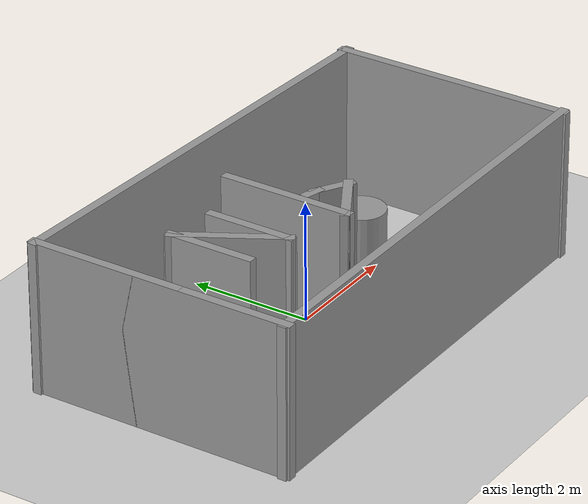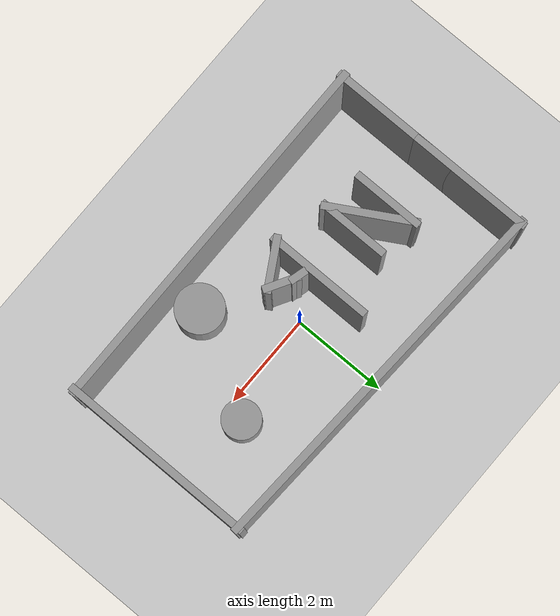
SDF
<sdf version='1.7'>
  <world name='default'>
    <light name='sun' type='directional'>
      <cast_shadows>1</cast_shadows>
      <pose>0 0 10 0 -0 0</pose>
      <diffuse>0.8 0.8 0.8 1</diffuse>
      <specular>0.2 0.2 0.2 1</specular>
      <attenuation>
        <range>1000</range>
        <constant>0.9</constant>
        <linear>0.01</linear>
        <quadratic>0.001</quadratic>
      </attenuation>
      <direction>-0.5 0.1 -0.9</direction>
      <spot>
        <inner_angle>0</inner_angle>
        <outer_angle>0</outer_angle>
        <falloff>0</falloff>
      </spot>
    </light>
    <model name='ground_plane'>
      <static>1</static>
      <link name='link'>
        <collision name='collision'>
          <geometry>
            <plane>
              <normal>0 0 1</normal>
              <size>100 100</size>
            </plane>
          </geometry>
          <surface>
            <contact>
              <collide_bitmask>65535</collide_bitmask>
              <ode/>
            </contact>
            <friction>
              <ode>
                <mu>100</mu>
                <mu2>50</mu2>
              </ode>
              <torsional>
                <ode/>
              </torsional>
            </friction>
            <bounce/>
          </surface>
          <max_contacts>10</max_contacts>
        </collision>
        <visual name='visual'>
          <cast_shadows>0</cast_shadows>
          <geometry>
            <plane>
              <normal>0 0 1</normal>
              <size>100 100</size>
            </plane>
          </geometry>
          <material>
            <script>
              <uri>file://media/materials/scripts/gazebo.material</uri>
              <name>Gazebo/Grey</name>
            </script>
          </material>
        </visual>
        <self_collide>0</self_collide>
        <enable_wind>0</enable_wind>
        <kinematic>0</kinematic>
      </link>
    </model>
    <gravity>0 0 -9.8</gravity>
    <magnetic_field>6e-06 2.3e-05 -4.2e-05</magnetic_field>
    <atmosphere type='adiabatic'/>
    <physics type='ode'>
      <max_step_size>0.002</max_step_size>
      <real_time_factor>1</real_time_factor>
      <real_time_update_rate>500</real_time_update_rate>
    </physics>
    <scene>
      <ambient>0.4 0.4 0.4 1</ambient>
      <background>0.7 0.7 0.7 1</background>
      <shadows>1</shadows>
    </scene>
    <audio>
      <device>default</device>
    </audio>
    <wind/>
    <spherical_coordinates>
      <surface_model>EARTH_WGS84</surface_model>
      <latitude_deg>0</latitude_deg>
      <longitude_deg>0</longitude_deg>
      <elevation>0</elevation>
      <heading_deg>0</heading_deg>
    </spherical_coordinates>
    <model name='wordnb'>
      <pose>0 0 0 0 0 0</pose>
      <link name='Wall_0'>
        <collision name='Wall_0_Collision'>
          <geometry>
            <box>
              <size>2.625 0.15 2.5</size>
            </box>
          </geometry>
          <pose>0 0 1.25 0 -0 0</pose>
          <max_contacts>10</max_contacts>
          <surface>
            <contact>
              <ode/>
            </contact>
            <bounce/>
            <friction>
              <torsional>
                <ode/>
              </torsional>
              <ode/>
            </friction>
          </surface>
        </collision>
        <visual name='Wall_0_Visual'>
          <pose>0 0 1.25 0 -0 0</pose>
          <geometry>
            <box>
              <size>2.625 0.15 2.5</size>
            </box>
          </geometry>
          <material>
            <script>
              <uri>file://media/materials/scripts/gazebo.material</uri>
              <name>Gazebo/Grey</name>
            </script>
            <ambient>1 1 1 1</ambient>
          </material>
          <meta>
            <layer>0</layer>
          </meta>
        </visual>
        <pose>-3.825 0.91125 0 0 -0 1.5708</pose>
        <self_collide>0</self_collide>
        <enable_wind>0</enable_wind>
        <kinematic>0</kinematic>
      </link>
      <link name='Wall_1'>
        <collision name='Wall_1_Collision'>
          <geometry>
            <box>
              <size>4.5 0.15 2.5</size>
            </box>
          </geometry>
          <pose>0 0 1.25 0 -0 0</pose>
          <max_contacts>10</max_contacts>
          <surface>
            <contact>
              <ode/>
            </contact>
            <bounce/>
            <friction>
              <torsional>
                <ode/>
              </torsional>
              <ode/>
            </friction>
          </surface>
        </collision>
        <visual name='Wall_1_Visual'>
          <pose>0 0 1.25 0 -0 0</pose>
          <geometry>
            <box>
              <size>4.5 0.15 2.5</size>
            </box>
          </geometry>
          <material>
            <script>
              <uri>file://media/materials/scripts/gazebo.material</uri>
              <name>Gazebo/Grey</name>
            </script>
            <ambient>1 1 1 1</ambient>
          </material>
          <meta>
            <layer>0</layer>
          </meta>
        </visual>
        <pose>-3.825 -0.02625 0 0 -0 -1.5708</pose>
        <self_collide>0</self_collide>
        <enable_wind>0</enable_wind>
        <kinematic>0</kinematic>
      </link>
      <link name='Wall_10'>
        <collision name='Wall_10_Collision'>
          <geometry>
            <box>
              <size>1.5 0.15 2.5</size>
            </box>
          </geometry>
          <pose>0 0 1.25 0 -0 0</pose>
          <max_contacts>10</max_contacts>
          <surface>
            <contact>
              <ode/>
            </contact>
            <bounce/>
            <friction>
              <torsional>
                <ode/>
              </torsional>
              <ode/>
            </friction>
          </surface>
        </collision>
        <visual name='Wall_10_Visual'>
          <pose>0 0 1.25 0 -0 0</pose>
          <geometry>
            <box>
              <size>1.5 0.15 2.5</size>
            </box>
          </geometry>
          <material>
            <script>
              <uri>file://media/materials/scripts/gazebo.material</uri>
              <name>Gazebo/Grey</name>
            </script>
            <ambient>1 1 1 1</ambient>
          </material>
          <meta>
            <layer>0</layer>
          </meta>
        </visual>
        <pose>-1.755 -0.195192 0 0 -0 1.5708</pose>
        <self_collide>0</self_collide>
        <enable_wind>0</enable_wind>
        <kinematic>0</kinematic>
      </link>
      <link name='Wall_12'>
        <collision name='Wall_12_Collision'>
          <geometry>
            <box>
              <size>2.25 0.15 2.5</size>
            </box>
          </geometry>
          <pose>0 0 1.25 0 -0 0</pose>
          <max_contacts>10</max_contacts>
          <surface>
            <contact>
              <ode/>
            </contact>
            <bounce/>
            <friction>
              <torsional>
                <ode/>
              </torsional>
              <ode/>
            </friction>
          </surface>
        </collision>
        <visual name='Wall_12_Visual'>
          <pose>0 0 1.25 0 -0 0</pose>
          <geometry>
            <box>
              <size>2.25 0.15 2.5</size>
            </box>
          </geometry>
          <material>
            <script>
              <uri>file://media/materials/scripts/gazebo.material</uri>
              <name>Gazebo/Grey</name>
            </script>
            <ambient>1 1 1 1</ambient>
          </material>
          <meta>
            <layer>0</layer>
          </meta>
        </visual>
        <pose>-0.675 -0.11625 0 0 -0 -1.5708</pose>
        <self_collide>0</self_collide>
        <enable_wind>0</enable_wind>
        <kinematic>0</kinematic>
      </link>
      <link name='Wall_13'>
        <collision name='Wall_13_Collision'>
          <geometry>
            <box>
              <size>1.125 0.15 2.5</size>
            </box>
          </geometry>
          <pose>0 0 1.25 0 -0 0</pose>
          <max_contacts>10</max_contacts>
          <surface>
            <contact>
              <ode/>
            </contact>
            <bounce/>
            <friction>
              <torsional>
                <ode/>
              </torsional>
              <ode/>
            </friction>
          </surface>
        </collision>
        <visual name='Wall_13_Visual'>
          <pose>0 0 1.25 0 -0 0</pose>
          <geometry>
            <box>
              <size>1.125 0.15 2.5</size>
            </box>
          </geometry>
          <material>
            <script>
              <uri>file://media/materials/scripts/gazebo.material</uri>
              <name>Gazebo/Grey</name>
            </script>
            <ambient>1 1 1 1</ambient>
          </material>
          <meta>
            <layer>0</layer>
          </meta>
        </visual>
        <pose>-0.285288 -0.90375 0 0 -0 0.523599</pose>
        <self_collide>0</self_collide>
        <enable_wind>0</enable_wind>
        <kinematic>0</kinematic>
      </link>
      <link name='Wall_14'>
        <collision name='Wall_14_Collision'>
          <geometry>
            <box>
              <size>0.75 0.15 2.5</size>
            </box>
          </geometry>
          <pose>0 0 1.25 0 -0 0</pose>
          <max_contacts>10</max_contacts>
          <surface>
            <contact>
              <ode/>
            </contact>
            <bounce/>
            <friction>
              <torsional>
                <ode/>
              </torsional>
              <ode/>
            </friction>
          </surface>
        </collision>
        <visual name='Wall_14_Visual'>
          <pose>0 0 1.25 0 -0 0</pose>
          <geometry>
            <box>
              <size>0.75 0.15 2.5</size>
            </box>
          </geometry>
          <material>
            <script>
              <uri>file://media/materials/scripts/gazebo.material</uri>
              <name>Gazebo/Grey</name>
            </script>
            <ambient>1 1 1 1</ambient>
          </material>
          <meta>
            <layer>0</layer>
          </meta>
        </visual>
        <pose>-0.122909 -0.5475 0 0 -0 2.61799</pose>
        <self_collide>0</self_collide>
        <enable_wind>0</enable_wind>
        <kinematic>0</kinematic>
      </link>
      <link name='Wall_15'>
        <collision name='Wall_15_Collision'>
          <geometry>
            <box>
              <size>0.375 0.15 2.5</size>
            </box>
          </geometry>
          <pose>0 0 1.25 0 -0 0</pose>
          <max_contacts>10</max_contacts>
          <surface>
            <contact>
              <ode/>
            </contact>
            <bounce/>
            <friction>
              <torsional>
                <ode/>
              </torsional>
              <ode/>
            </friction>
          </surface>
        </collision>
        <visual name='Wall_15_Visual'>
          <pose>0 0 1.25 0 -0 0</pose>
          <geometry>
            <box>
              <size>0.375 0.15 2.5</size>
            </box>
          </geometry>
          <material>
            <script>
              <uri>file://media/materials/scripts/gazebo.material</uri>
              <name>Gazebo/Grey</name>
            </script>
            <ambient>1 1 1 1</ambient>
          </material>
          <meta>
            <layer>0</layer>
          </meta>
        </visual>
        <pose>-0.422685 -0.396839 0 0 -0 2.87979</pose>
        <self_collide>0</self_collide>
        <enable_wind>0</enable_wind>
        <kinematic>0</kinematic>
      </link>
      <link name='Wall_2'>
        <collision name='Wall_2_Collision'>
          <geometry>
            <box>
              <size>7.875 0.15 2.5</size>
            </box>
          </geometry>
          <pose>0 0 1.25 0 -0 0</pose>
          <max_contacts>10</max_contacts>
          <surface>
            <contact>
              <ode/>
            </contact>
            <bounce/>
            <friction>
              <torsional>
                <ode/>
              </torsional>
              <ode/>
            </friction>
          </surface>
        </collision>
        <visual name='Wall_2_Visual'>
          <pose>0 0 1.25 0 -0 0</pose>
          <geometry>
            <box>
              <size>7.875 0.15 2.5</size>
            </box>
          </geometry>
          <material>
            <script>
              <uri>file://media/materials/scripts/gazebo.material</uri>
              <name>Gazebo/Grey</name>
            </script>
            <ambient>1 1 1 1</ambient>
          </material>
          <meta>
            <layer>0</layer>
          </meta>
        </visual>
        <pose>0 -2.16375 0 0 -0 0</pose>
        <self_collide>0</self_collide>
        <enable_wind>0</enable_wind>
        <kinematic>0</kinematic>
      </link>
      <link name='Wall_3'>
        <collision name='Wall_3_Collision'>
          <geometry>
            <box>
              <size>4.125 0.15 2.5</size>
            </box>
          </geometry>
          <pose>0 0 1.25 0 -0 0</pose>
          <max_contacts>10</max_contacts>
          <surface>
            <contact>
              <ode/>
            </contact>
            <bounce/>
            <friction>
              <torsional>
                <ode/>
              </torsional>
              <ode/>
            </friction>
          </surface>
        </collision>
        <visual name='Wall_3_Visual'>
          <pose>0 0 1.25 0 -0 0</pose>
          <geometry>
            <box>
              <size>4.125 0.15 2.5</size>
            </box>
          </geometry>
          <material>
            <script>
              <uri>file://media/materials/scripts/gazebo.material</uri>
              <name>Gazebo/Grey</name>
            </script>
            <ambient>1 1 1 1</ambient>
          </material>
          <meta>
            <layer>0</layer>
          </meta>
        </visual>
        <pose>3.825 -0.21375 0 0 -0 1.5708</pose>
        <self_collide>0</self_collide>
        <enable_wind>0</enable_wind>
        <kinematic>0</kinematic>
      </link>
      <link name='Wall_4'>
        <collision name='Wall_4_Collision'>
          <geometry>
            <box>
              <size>7.88418 0.15 2.5</size>
            </box>
          </geometry>
          <pose>0 0 1.25 0 -0 0</pose>
          <max_contacts>10</max_contacts>
          <surface>
            <contact>
              <ode/>
            </contact>
            <bounce/>
            <friction>
              <torsional>
                <ode/>
              </torsional>
              <ode/>
            </friction>
          </surface>
        </collision>
        <visual name='Wall_4_Visual'>
          <pose>0 0 1.25 0 -0 0</pose>
          <geometry>
            <box>
              <size>7.88418 0.15 2.5</size>
            </box>
          </geometry>
          <material>
            <script>
              <uri>file://media/materials/scripts/gazebo.material</uri>
              <name>Gazebo/Grey</name>
            </script>
            <ambient>1 1 1 1</ambient>
          </material>
          <meta>
            <layer>0</layer>
          </meta>
        </visual>
        <pose>0 1.92375 0 0 -0 3.09261</pose>
        <self_collide>0</self_collide>
        <enable_wind>0</enable_wind>
        <kinematic>0</kinematic>
      </link>
      <link name='Wall_6'>
        <collision name='Wall_6_Collision'>
          <geometry>
            <box>
              <size>1.5 0.15 2.5</size>
            </box>
          </geometry>
          <pose>0 0 1.25 0 -0 0</pose>
          <max_contacts>10</max_contacts>
          <surface>
            <contact>
              <ode/>
            </contact>
            <bounce/>
            <friction>
              <torsional>
                <ode/>
              </torsional>
              <ode/>
            </friction>
          </surface>
        </collision>
        <visual name='Wall_6_Visual'>
          <pose>0 0 1.25 0 -0 0</pose>
          <geometry>
            <box>
              <size>1.5 0.15 2.5</size>
            </box>
          </geometry>
          <material>
            <script>
              <uri>file://media/materials/scripts/gazebo.material</uri>
              <name>Gazebo/Grey</name>
            </script>
            <ambient>1 1 1 1</ambient>
          </material>
          <meta>
            <layer>0</layer>
          </meta>
        </visual>
        <pose>-2.58 -0.04125 0 0 -0 -1.5708</pose>
        <self_collide>0</self_collide>
        <enable_wind>0</enable_wind>
        <kinematic>0</kinematic>
      </link>
      <link name='Wall_9'>
        <collision name='Wall_9_Collision'>
          <geometry>
            <box>
              <size>1.875 0.15 2.5</size>
            </box>
          </geometry>
          <pose>0 0 1.25 0 -0 0</pose>
          <max_contacts>10</max_contacts>
          <surface>
            <contact>
              <ode/>
            </contact>
            <bounce/>
            <friction>
              <torsional>
                <ode/>
              </torsional>
              <ode/>
            </friction>
          </surface>
        </collision>
        <visual name='Wall_9_Visual'>
          <pose>0 0 1.25 0 -0 0</pose>
          <geometry>
            <box>
              <size>1.875 0.15 2.5</size>
            </box>
          </geometry>
          <material>
            <script>
              <uri>file://media/materials/scripts/gazebo.material</uri>
              <name>Gazebo/Grey</name>
            </script>
            <ambient>1 1 1 1</ambient>
          </material>
          <meta>
            <layer>0</layer>
          </meta>
        </visual>
        <pose>-2.1675 -0.118221 0 0 -0 -1.0472</pose>
        <self_collide>0</self_collide>
        <enable_wind>0</enable_wind>
        <kinematic>0</kinematic>
      </link>
      <static>1</static>
    </model>
    <model name='11'>
      <link name='link_0'>
        <inertial>
          <mass>1</mass>
          <inertia>
            <ixx>0.145833</ixx>
            <ixy>0</ixy>
            <ixz>0</ixz>
            <iyy>0.145833</iyy>
            <iyz>0</iyz>
            <izz>0.125</izz>
          </inertia>
          <pose>0 0 0 0 -0 0</pose>
        </inertial>
        <pose>-1e-06 -3e-06 0 0 -0 0</pose>
        <visual name='visual'>
          <pose>0 0 0 0 -0 0</pose>
          <geometry>
            <cylinder>
              <radius>0.5</radius>
              <length>1</length>
            </cylinder>
          </geometry>
          <material>
            <lighting>1</lighting>
            <script>
              <uri>file://media/materials/scripts/gazebo.material</uri>
              <name>Gazebo/Grey</name>
            </script>
            <shader type='pixel'/>
          </material>
          <transparency>0</transparency>
          <cast_shadows>1</cast_shadows>
        </visual>
        <collision name='collision'>
          <laser_retro>0</laser_retro>
          <max_contacts>10</max_contacts>
          <pose>0 0 0 0 -0 0</pose>
          <geometry>
            <cylinder>
              <radius>0.5</radius>
              <length>1</length>
            </cylinder>
          </geometry>
          <surface>
            <friction>
              <ode>
                <mu>1</mu>
                <mu2>1</mu2>
                <fdir1>0 0 0</fdir1>
                <slip1>0</slip1>
                <slip2>0</slip2>
              </ode>
              <torsional>
                <coefficient>1</coefficient>
                <patch_radius>0</patch_radius>
                <surface_radius>0</surface_radius>
                <use_patch_radius>1</use_patch_radius>
                <ode>
                  <slip>0</slip>
                </ode>
              </torsional>
            </friction>
            <bounce>
              <restitution_coefficient>0</restitution_coefficient>
              <threshold>1e+06</threshold>
            </bounce>
            <contact>
              <collide_without_contact>0</collide_without_contact>
              <collide_without_contact_bitmask>1</collide_without_contact_bitmask>
              <collide_bitmask>1</collide_bitmask>
              <ode>
                <soft_cfm>0</soft_cfm>
                <soft_erp>0.2</soft_erp>
                <kp>1e+13</kp>
                <kd>1</kd>
                <max_vel>0.01</max_vel>
                <min_depth>0</min_depth>
              </ode>
              <bullet>
                <split_impulse>1</split_impulse>
                <split_impulse_penetration_threshold>-0.01</split_impulse_penetration_threshold>
                <soft_cfm>0</soft_cfm>
                <soft_erp>0.2</soft_erp>
                <kp>1e+13</kp>
                <kd>1</kd>
              </bullet>
            </contact>
          </surface>
        </collision>
        <self_collide>0</self_collide>
        <enable_wind>0</enable_wind>
        <kinematic>0</kinematic>
      </link>
      <static>0</static>
      <allow_auto_disable>1</allow_auto_disable>
      <pose>1.10905 -1.55405 0.5 0 -0 0</pose>
    </model>
    <model name='park_obstacle'>
      <link name='link_0'>
        <inertial>
          <mass>1</mass>
          <inertia>
            <ixx>0.093333</ixx>
            <ixy>0</ixy>
            <ixz>0</ixz>
            <iyy>0.093333</iyy>
            <iyz>0</iyz>
            <izz>0.08</izz>
          </inertia>
          <pose>0 0 0 0 -0 0</pose>
        </inertial>
        <pose>-1e-06 -3e-06 0 0 -0 0</pose>
        <visual name='visual'>
          <pose>0 0 0 0 -0 0</pose>
          <geometry>
            <cylinder>
              <radius>0.4</radius>
              <length>0.8</length>
            </cylinder>
          </geometry>
          <material>
            <lighting>1</lighting>
            <script>
              <uri>file://media/materials/scripts/gazebo.material</uri>
              <name>Gazebo/Grey</name>
            </script>
            <shader type='pixel'/>
          </material>
          <transparency>0</transparency>
          <cast_shadows>1</cast_shadows>
        </visual>
        <collision name='collision'>
          <laser_retro>0</laser_retro>
          <max_contacts>10</max_contacts>
          <pose>0 0 0 0 -0 0</pose>
          <geometry>
            <cylinder>
              <radius>0.4</radius>
              <length>0.8</length>
            </cylinder>
          </geometry>
          <surface>
            <friction>
              <ode>
                <mu>1</mu>
                <mu2>1</mu2>
                <fdir1>0 0 0</fdir1>
                <slip1>0</slip1>
                <slip2>0</slip2>
              </ode>
              <torsional>
                <coefficient>1</coefficient>
                <patch_radius>0</patch_radius>
                <surface_radius>0</surface_radius>
                <use_patch_radius>1</use_patch_radius>
                <ode>
                  <slip>0</slip>
                </ode>
              </torsional>
            </friction>
            <bounce>
              <restitution_coefficient>0</restitution_coefficient>
              <threshold>1e+06</threshold>
            </bounce>
            <contact>
              <collide_without_contact>0</collide_without_contact>
              <collide_without_contact_bitmask>1</collide_without_contact_bitmask>
              <collide_bitmask>1</collide_bitmask>
              <ode>
                <soft_cfm>0</soft_cfm>
                <soft_erp>0.2</soft_erp>
                <kp>1e+13</kp>
                <kd>1</kd>
                <max_vel>0.01</max_vel>
                <min_depth>0</min_depth>
              </ode>
              <bullet>
                <split_impulse>1</split_impulse>
                <split_impulse_penetration_threshold>-0.01</split_impulse_penetration_threshold>
                <soft_cfm>0</soft_cfm>
                <soft_erp>0.2</soft_erp>
                <kp>1e+13</kp>
                <kd>1</kd>
              </bullet>
            </contact>
          </surface>
        </collision>
        <self_collide>0</self_collide>
        <enable_wind>0</enable_wind>
        <kinematic>0</kinematic>
      </link>
      <static>0</static>
      <allow_auto_disable>1</allow_auto_disable>
      <pose>2.2 0.4 0.4 0 -0 0</pose>
    </model>

    <gui fullscreen='0'>
      <camera name='user_camera'>
        <pose>1.48444 -4.36214 13.9173 0 1.2818 1.44419</pose>
        <view_controller>orbit</view_controller>
        <projection_type>perspective</projection_type>
      </camera>
    </gui>
  </world>
</sdf>
